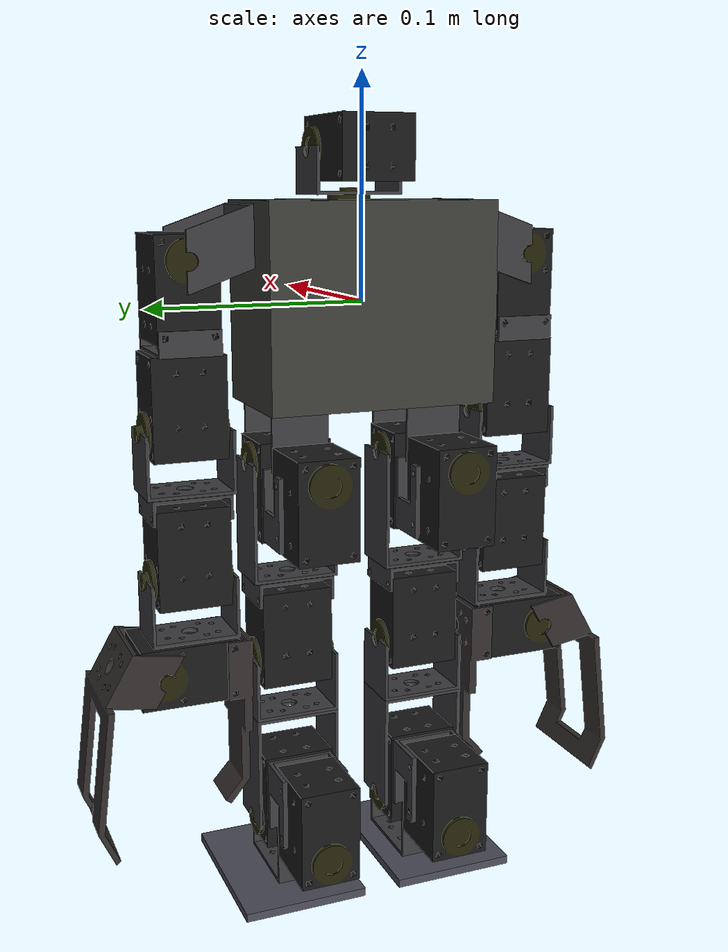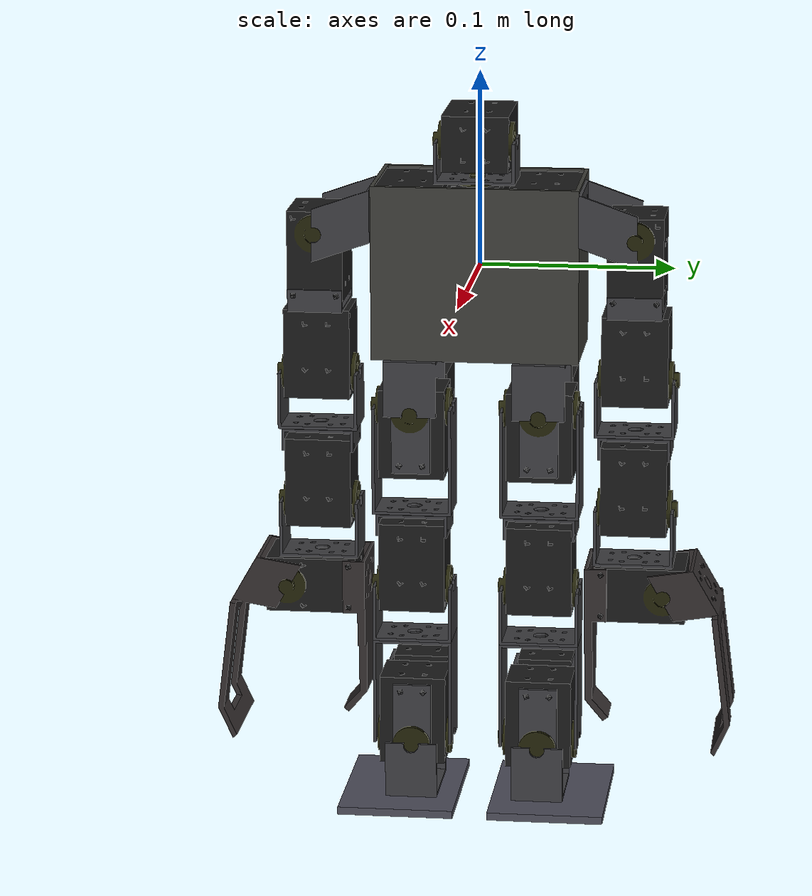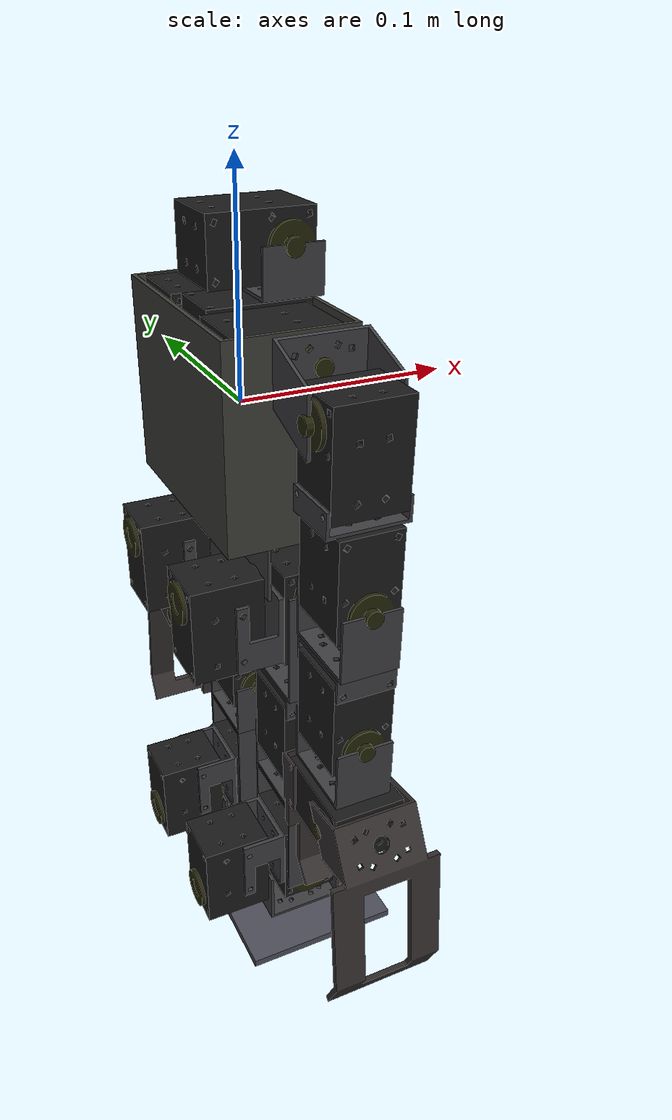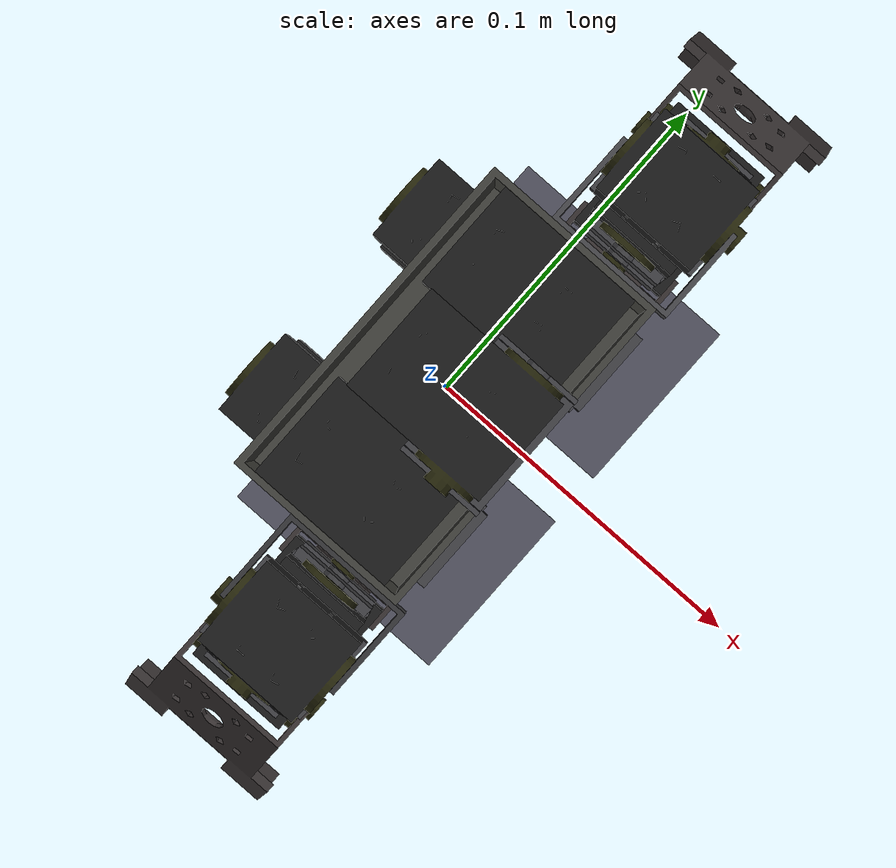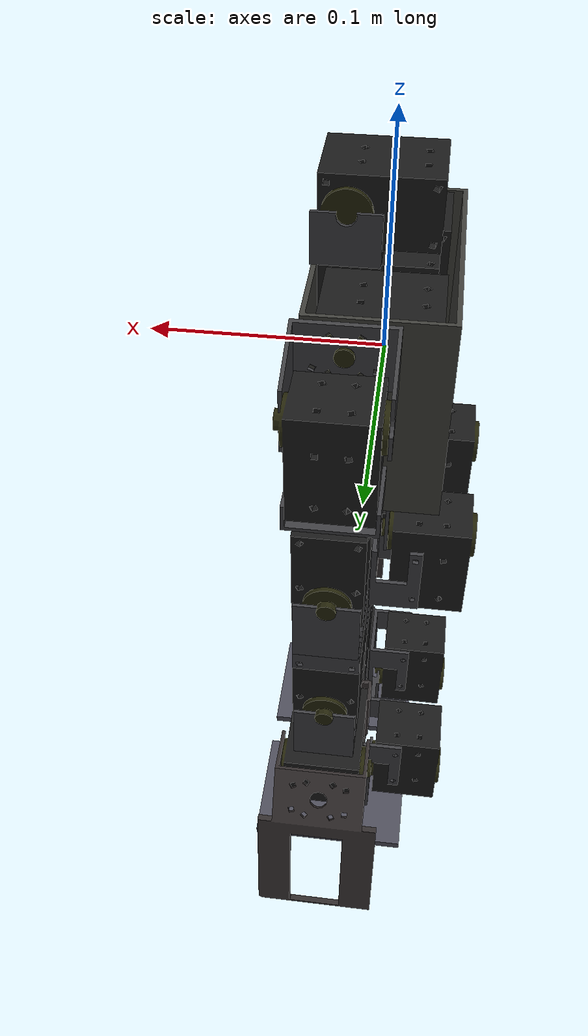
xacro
<?xml version="1.0"?>
<!-- XML namespaces -->
<robot xmlns:xi="http://www.w3.org/2001/XInclude"
       xmlns:gazebo="http://playerstage.sourceforge.net/gazebo/xmlschema/#gz"
       xmlns:model="http://playerstage.sourceforge.net/gazebo/xmlschema/#model"
       xmlns:sensor="http://playerstage.sourceforge.net/gazebo/xmlschema/#sensor"
       xmlns:body="http://playerstage.sourceforge.net/gazebo/xmlschema/#body"
       xmlns:geom="http://playerstage.sourceforge.net/gazebo/xmlschema/#geom"
       xmlns:joint="http://playerstage.sourceforge.net/gazebo/xmlschema/#joint"
       xmlns:interface="http://playerstage.sourceforge.net/gazebo/xmlschema/#interface"
       xmlns:rendering="http://playerstage.sourceforge.net/gazebo/xmlschema/#rendering"
       xmlns:renderable="http://playerstage.sourceforge.net/gazebo/xmlschema/#renderable"
       xmlns:controller="http://playerstage.sourceforge.net/gazebo/xmlschema/#controller"
       xmlns:physics="http://playerstage.sourceforge.net/gazebo/xmlschema/#physics"
       xmlns:xacro="http://ros.org/wiki/xacro"
       name="SAMPLE_HUMANOID" >
  <xacro:include filename="$(find robot_assembler)/gazebo/gazebo_plugins.xacro" />
  <xacro:include filename="$(find robot_assembler)/sample/SAMPLE_HUMANOID.urdf" />
  <xacro:add_gazebo_imu_sensor link_name="BASE" frame="BASE" />
  <xacro:add_gazebo_ros_ft_sensor topic="rhsensor" joint_name="JOINT6" />
  <xacro:add_gazebo_ros_ft_sensor topic="lhsensor" joint_name="JOINT11" />
  <!--xacro:add_gazebo_camera pose="-0.03 0 0 -1.570796 -0.000000 1.570796" xyz="-0.03 0 0" rpy="-1.570796 -1.570796 0.000000" link_name="LINK1" /-->
  <xacro:add_gazebo_range_sensor pose="0 0 -0.02 0 0 0" xyz="0 0 -0.02" rpy="0 0 0" link_name="BASE" />
  <xacro:add_gazebo_fisheye_camera pose="-0.03 0 0 -1.570796 -0.000000 1.570796" xyz="-0.03 0 0" rpy="-1.570796 -1.570796 0.000000" link_name="LINK1" />
</robot>

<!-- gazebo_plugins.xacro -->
<robot xmlns:xacro="http://ros.org/wiki/xacro">
  <xacro:macro name="add_gazebo_ros_ft_sensor" params="joint_name rate:=100 topic:=ft_sensor" >
    <!-- Enable the Joint Feedback -->
    <gazebo reference="${joint_name}">
      <provideFeedback>true</provideFeedback>
    </gazebo>
    <!-- The ft_sensor plugin -->
    <gazebo>
      <plugin name="ft_sensor" filename="libgazebo_ros_ft_sensor.so">
        <updateRate>${rate}</updateRate>
        <topicName>${topic}</topicName>
        <jointName>${joint_name}</jointName>
      </plugin>
    </gazebo>
  </xacro:macro>
  <xacro:macro name="add_gazebo_range_sensor" params="link_name frame:=range_frame pose:='0 0 0 0 0 0' xyz:='0 0 0' rpy:='0 0 0' rate:=40 topic:=range_sensor visualize:=true" >
    <!-- create range frame-->
    <link name="${frame}" />
    <joint name="${frame}_fixed_joint" type="fixed">
      <parent link="${link_name}"/>
      <child link="${frame}"/>
      <origin xyz="${xyz}" rpy="${rpy}"/>
    </joint>
    <gazebo reference="${frame}">
      <sensor type="ray" name="range_sensor">
        <visualize>${visualize}</visualize>
        <update_rate>${rate}</update_rate>
        <ray>
          <scan>
            <horizontal>
              <samples>720</samples>
              <resolution>1</resolution>
              <min_angle>-1.570796</min_angle>
              <max_angle>1.570796</max_angle>
            </horizontal>
          </scan>
          <range>
            <min>0.10</min>
            <max>30.0</max>
            <resolution>0.01</resolution>
          </range>
          <noise>
            <type>gaussian</type>
            <mean>0.0</mean>
            <stddev>0.01</stddev>
          </noise>
        </ray>
        <plugin name="gazebo_ros_head_hokuyo_controller" filename="libgazebo_ros_laser.so">
          <topicName>${topic}</topicName>
          <frameName>${frame}</frameName>
        </plugin>
      </sensor>
    </gazebo>
  </xacro:macro>
  <xacro:macro name="add_gazebo_imu_sensor" params="link_name frame:=imu_frame pose:='0 0 0 0 0 0' pos:='0 0 0' rpy:='0 0 0' rate:=200 topic:=imu_sensor visualize:=false" >
    <gazebo reference="${link_name}">
      <gravity>true</gravity>
      <sensor name="imu_sensor" type="imu">
        <always_on>true</always_on>
        <update_rate>${rate}</update_rate>
        <visualize>${visualize}</visualize>
        <topic>${topic}</topic>
        <pose>${pose}</pose>
        <plugin filename="libgazebo_ros_imu_sensor.so" name="imu_plugin">
          <topicName>${topic}</topicName>
          <bodyName>${link_name}</bodyName>
          <updateRateHZ>${rate}</updateRateHZ>
          <gaussianNoise>0.0</gaussianNoise>
          <xyzOffset>${pos}</xyzOffset>
          <rpyOffset>${rpy}</rpyOffset>
          <frameName>${frame}</frameName>
          <initialOrientationAsReference>false</initialOrientationAsReference>
        </plugin>
      </sensor>
    </gazebo>
  </xacro:macro>
  <xacro:macro name="add_gazebo_camera" params="link_name camera_name=camera frame:=camera_frame pose:='0 0 0 0 0 0' xyz:='0 0 0' rpy:='0 0 0' rate:=30.0 width:=800 height:=600 fov:=1.578 visualize:=true" >
    <!-- create camera frame-->
    <link name="${frame}" />
    <joint name="${frame}_fixed_joint" type="fixed">
      <parent link="${link_name}"/>
      <child link="${frame}"/>
      <origin xyz="${xyz}" rpy="${rpy}"/>
    </joint>
    <!-- camera -->
    <gazebo reference="${link_name}">
      <sensor name="${link_name}_camera" type="camera" >
        <pose>${pose}</pose>
        <always_on>true</always_on>
        <update_rate>${rate}</update_rate>
        <visualize>${visualize}</visualize>
        <camera name="${link_name}_camera">
          <horizontal_fov>${fov}</horizontal_fov>
          <image>
            <width>${width}</width>
            <height>${height}</height>
            <format>R8G8B8</format>
          </image>
          <clip>
            <near>0.02</near>
            <far>300</far>
          </clip>
          <noise>
            <type>gaussian</type>
            <!-- Noise is sampled independently per pixel on each frame.
                 That pixel's noise value is added to each of its color
                 channels, which at that point lie in the range [0,1]. -->
            <mean>0.0</mean>
            <stddev>0.007</stddev>
          </noise>
        </camera>
        <plugin name="camera_controller" filename="libgazebo_ros_camera.so">
          <alwaysOn>true</alwaysOn>
          <updateRate>0.0</updateRate>
          <cameraName>${camera_name}</cameraName>
          <imageTopicName>image_raw</imageTopicName>
          <cameraInfoTopicName>camera_info</cameraInfoTopicName>
          <frameName>${frame}</frameName>
          <hackBaseline>0.07</hackBaseline>
          <distortionK1>0.0</distortionK1>
          <distortionK2>0.0</distortionK2>
          <distortionK3>0.0</distortionK3>
          <distortionT1>0.0</distortionT1>
          <distortionT2>0.0</distortionT2>
        </plugin>
      </sensor>
    </gazebo>
  </xacro:macro>
  <xacro:macro name="add_gazebo_depth_camera" params="link_name camera_name=depth_cam frame:=depth_frame pose:='0 0 0 0 0 0' xyz:='0 0 0' rpy:='0 0 0' rate:=30.0 width:=800 height:=600 fov:=1.578 visualize:=true" >
    <!-- create camera frame-->
    <link name="${frame}" />
    <joint name="${frame}_fixed_joint" type="fixed">
      <parent link="${link_name}"/>
      <child link="${frame}"/>
      <origin xyz="${xyz}" rpy="${rpy}"/>
    </joint>
    <gazebo reference="${link_name}">
      <sensor name="${link_name}_depth_camera" type="depth">
        <pose>${pose}</pose>
        <always_on>true</always_on>
        <update_rate>${rate}</update_rate>
        <visualize>${visualize}</visualize>
        <camera>
          <horizontal_fov>${fov}</horizontal_fov>
          <image>
            <width>${width}</width>
            <height>${height}</height>
            <format>R8G8B8</format>
          </image>
          <clip near="0.01" far="100.0" />
          <save enabled="false" path="/tmp" />
          <depth_camera output="points" />
        </camera>
        <plugin name="plugin_1" filename="libgazebo_ros_depth_camera.so">
          <alwaysOn>1</alwaysOn>
          <updateRate>${rate}</updateRate>
          <imageTopicName>image_raw</imageTopicName>
          <pointCloudTopicName>points</pointCloudTopicName>
          <cameraInfoTopicName>camera_info</cameraInfoTopicName>
          <cameraName>${camera_name}</cameraName>
          <frameName>${frame}</frameName>
          <pointCloudCutoff>0.001</pointCloudCutoff>
          <distortionK1>0.00000001</distortionK1>
          <distortionK2>0.00000001</distortionK2>
          <distortionK3>0.00000001</distortionK3>
          <distortionT1>0.00000001</distortionT1>
          <distortionT2>0.00000001</distortionT2>
        </plugin>
      </sensor>
    </gazebo>
  </xacro:macro>
  <xacro:macro name="add_gazebo_fisheye_camera" params="link_name camera_name=camera frame:=camera_frame pose:='0 0 0 0 0 0' xyz:='0 0 0' rpy:='0 0 0' rate:=30.0 width:=1024 height:=1024 fov:=3.14 visualize:=false" >
    <!-- create camera frame-->
    <link name="${frame}" />
    <joint name="${frame}_fixed_joint" type="fixed">
      <parent link="${link_name}"/>
      <child link="${frame}"/>
      <origin xyz="${xyz}" rpy="${rpy}"/>
    </joint>
    <!-- camera -->
    <gazebo reference="${link_name}">
      <sensor name="${link_name}_camera" type="wideanglecamera" >
        <pose>${pose}</pose>
        <always_on>true</always_on>
        <update_rate>${rate}</update_rate>
        <visualize>${visualize}</visualize>
        <camera name="${link_name}_camera">
          <horizontal_fov>${fov}</horizontal_fov>
          <image>
            <width>${width}</width>
            <height>${height}</height>
            <format>R8G8B8</format>
          </image>
          <clip>
            <near>0.02</near>
            <far>300</far>
          </clip>
          <lens> <!-- for Fisheye -->
            <!-- type: gnomonical, stereographic, equidistant, equisolid_angle, orthographic, custom -->
            <!-- More information here: https://en.wikipedia.org/wiki/Fisheye_lens#Mapping_function -->
            <type>custom</type>  <!-- manually defined mapping function r = c1*f*fun(theta/c2 + c3) -->
            <custom_function>
              <c1>2</c1>
              <c2>2</c2>
              <c3>0</c3>
              <f>0.63661977</f> <!-- ( 2.0 / pi ) -->
              <fun>id</fun> <!-- one of sin,tan,id -->
            </custom_function>
            <!-- if it is set to `true` your horizontal FOV will ramain as defined -->
            <!-- othervise it depends on lens type and custom function, if there is one -->
            <scale_to_hfov>false</scale_to_hfov>
            <cutoff_angle>1.5707</cutoff_angle> <!-- clip everything that is outside of this angle -->
            <!-- resolution of the cubemap texture, the highter it is - the sharper is your image -->
            <env_texture_size>2048</env_texture_size>
          </lens>
        </camera>
        <plugin name="camera_controller" filename="libgazebo_ros_camera.so">
          <alwaysOn>true</alwaysOn>
          <updateRate>0.0</updateRate>
          <cameraName>${camera_name}</cameraName>
          <imageTopicName>image_raw</imageTopicName>
          <cameraInfoTopicName>camera_info</cameraInfoTopicName>
          <frameName>${frame}</frameName>
          <hackBaseline>0.07</hackBaseline>
          <distortionK1>0.0</distortionK1>
          <distortionK2>0.0</distortionK2>
          <distortionK3>0.0</distortionK3>
          <distortionT1>0.0</distortionT1>
          <distortionT2>0.0</distortionT2>
        </plugin>
      </sensor>
    </gazebo>
  </xacro:macro>
</robot>
